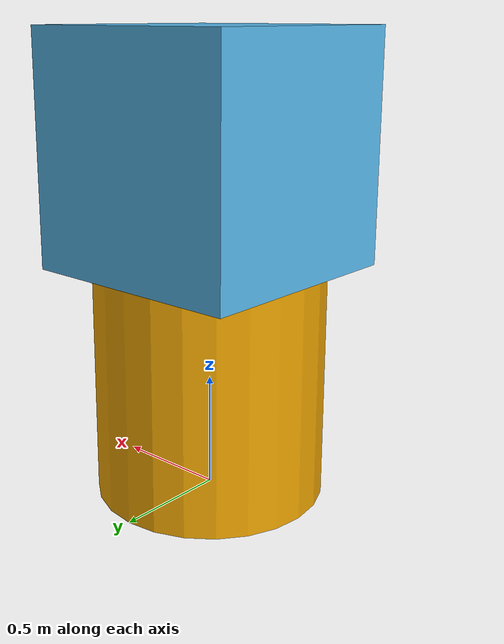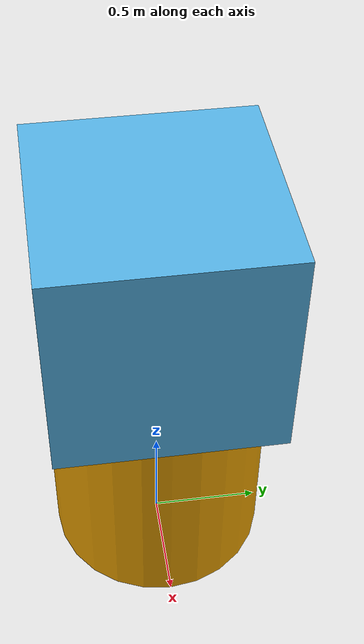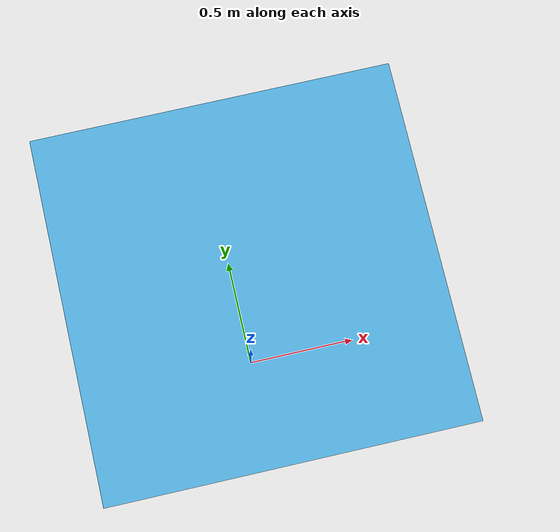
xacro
<?xml version="1.0"?>
<robot name="demo1" xmlns:xacro="http://www.ros.org/wiki/xacro">
    <!-- 你也可以直接不使用变量代替重复 -->
    <!-- 使用变量方便重复 -->
    <xacro:property name="radius" value="0.5"/>
    <xacro:property name="length" value="1"/>

    <link name="dyh">
        <visual>
        <origin xyz="0 0 0.5" rpy="0 0 0"/>
            <geometry>
                <cylinder length="${length}" radius="${radius}"/>
            </geometry>
        </visual>
        <collision>
            <geometry>
                <cylinder length="${length}" radius="${radius}"/>
            </geometry>
        </collision>
    </link>

    <link name="dyh1">
        <visual>
        <origin xyz="0 0 0.5" rpy="0 0 0"/>
            <geometry>
                <box size=" 1 1 1"/>
            </geometry>
        </visual>
        <collision>
            <geometry>
                <box size="1 1 1"/>
            </geometry>
        </collision>
    </link>

    <joint name="combine" type="fixed">
        <parent link="dyh"/>
        <child link="dyh1"/>
        <origin xyz="0 0 1.0" rpy="0 0 0"/>
    </joint>
</robot>
